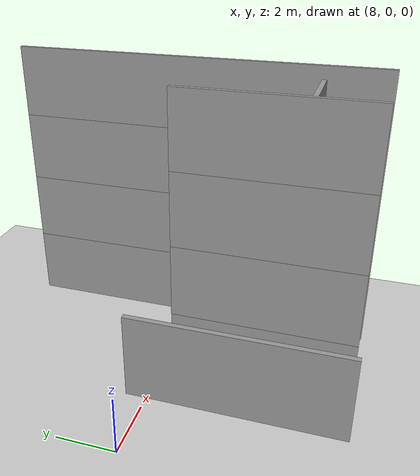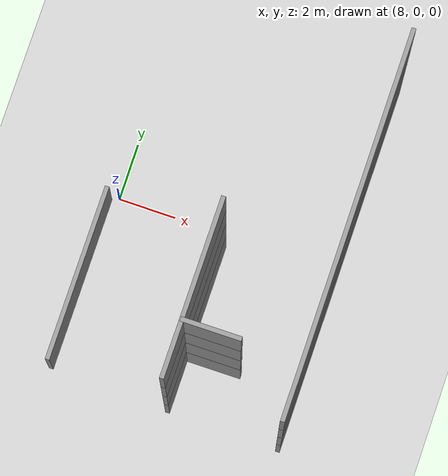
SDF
<sdf version="1.6">
 <world name="default">
  <model name="ground_plane">
   <static>1</static>
   <link name="link">
    <collision name="collision">
     <geometry><plane><normal>0 0 1</normal><size>100 100</size></plane></geometry>
     <surface>
      <contact><collide_bitmask>65535</collide_bitmask></contact>
      <friction><ode><mu>100</mu><mu2>50</mu2></ode></friction>
     </surface>
    </collision>
    <visual name="visual">
     <cast_shadows>0</cast_shadows>
     <geometry><plane><normal>0 0 1</normal><size>100 100</size></plane></geometry>
     <material>
      <script><uri>file://media/materials/scripts/gazebo.material</uri><name>Gazebo/Grey</name></script>
     </material>
    </visual>
   </link>
  </model>
  <model name="floor2plan_v2">
   <link name="Wall_101">
    <pose>15.925 0 5 0 -0 1.5708</pose>
    <visual name="Wall_101_Visual">
     <pose>0 0 1.25 0 -0 0</pose>
     <geometry><box><size>13.023 0.15 2.5</size></box></geometry>
     <material>
      <script><uri>file://media/materials/scripts/gazebo.material</uri><name>Gazebo/Grey</name></script>
      <ambient>1 1 1 1</ambient>
      <shader type="pixel"/>
      <diffuse>0.7 0.7 0.7 1</diffuse>
      <specular>0.01 0.01 0.01 1</specular>
      <emissive>0 0 0 1</emissive>
     </material>
     <meta><layer>2</layer></meta>
    </visual>
    <collision name="Wall_101_Collision">
     <pose>0 0 1.25 0 -0 0</pose>
     <geometry><box><size>13.023 0.15 2.5</size></box></geometry>
     <surface>
      <friction>
       <ode><mu>1</mu><mu2>1</mu2><fdir1>0 0 0</fdir1><slip1>0</slip1><slip2>0</slip2></ode>
       <torsional>
        <coefficient>1</coefficient>
        <patch_radius>0</patch_radius>
        <surface_radius>0</surface_radius>
        <use_patch_radius>1</use_patch_radius>
        <ode><slip>0</slip></ode>
       </torsional>
      </friction>
      <bounce><restitution_coefficient>0</restitution_coefficient><threshold>1e+06</threshold></bounce>
      <contact>
       <collide_without_contact>0</collide_without_contact>
       <collide_without_contact_bitmask>1</collide_without_contact_bitmask>
       <collide_bitmask>1</collide_bitmask>
       <ode>
        <soft_cfm>0</soft_cfm>
        <soft_erp>0.2</soft_erp>
        <kp>1e+13</kp>
        <kd>1</kd>
        <max_vel>0.01</max_vel>
        <min_depth>0</min_depth>
       </ode>
       <bullet>
        <split_impulse>1</split_impulse>
        <split_impulse_penetration_threshold>-0.01</split_impulse_penetration_threshold>
        <soft_cfm>0</soft_cfm>
        <soft_erp>0.2</soft_erp>
        <kp>1e+13</kp>
        <kd>1</kd>
       </bullet>
      </contact>
     </surface>
    </collision>
   </link>
   <link name="Wall_11">
    <pose>15.925 0 0 0 -0 1.5708</pose>
    <visual name="Wall_11_Visual">
     <pose>0 0 1.25 0 -0 0</pose>
     <geometry><box><size>13.023 0.15 2.5</size></box></geometry>
     <material>
      <script><uri>file://media/materials/scripts/gazebo.material</uri><name>Gazebo/Grey</name></script>
      <ambient>1 1 1 1</ambient>
      <shader type="pixel"/>
      <diffuse>0.7 0.7 0.7 1</diffuse>
      <specular>0.01 0.01 0.01 1</specular>
      <emissive>0 0 0 1</emissive>
     </material>
     <meta><layer>0</layer></meta>
    </visual>
    <collision name="Wall_11_Collision">
     <pose>0 0 1.25 0 -0 0</pose>
     <geometry><box><size>13.023 0.15 2.5</size></box></geometry>
     <surface>
      <friction>
       <ode><mu>1</mu><mu2>1</mu2><fdir1>0 0 0</fdir1><slip1>0</slip1><slip2>0</slip2></ode>
       <torsional>
        <coefficient>1</coefficient>
        <patch_radius>0</patch_radius>
        <surface_radius>0</surface_radius>
        <use_patch_radius>1</use_patch_radius>
        <ode><slip>0</slip></ode>
       </torsional>
      </friction>
      <bounce><restitution_coefficient>0</restitution_coefficient><threshold>1e+06</threshold></bounce>
      <contact>
       <collide_without_contact>0</collide_without_contact>
       <collide_without_contact_bitmask>1</collide_without_contact_bitmask>
       <collide_bitmask>1</collide_bitmask>
       <ode>
        <soft_cfm>0</soft_cfm>
        <soft_erp>0.2</soft_erp>
        <kp>1e+13</kp>
        <kd>1</kd>
        <max_vel>0.01</max_vel>
        <min_depth>0</min_depth>
       </ode>
       <bullet>
        <split_impulse>1</split_impulse>
        <split_impulse_penetration_threshold>-0.01</split_impulse_penetration_threshold>
        <soft_cfm>0</soft_cfm>
        <soft_erp>0.2</soft_erp>
        <kp>1e+13</kp>
        <kd>1</kd>
       </bullet>
      </contact>
     </surface>
    </collision>
   </link>
   <link name="Wall_120">
    <pose>11.9851 -3.43428 5 0 0 -1.5708</pose>
    <visual name="Wall_120_Visual">
     <pose>0 0 1.25 0 -0 0</pose>
     <geometry><box><size>6 0.15 2.5</size></box></geometry>
     <material>
      <script><uri>file://media/materials/scripts/gazebo.material</uri><name>Gazebo/Grey</name></script>
      <ambient>1 1 1 1</ambient>
      <shader type="pixel"/>
      <diffuse>0.7 0.7 0.7 1</diffuse>
      <specular>0.01 0.01 0.01 1</specular>
      <emissive>0 0 0 1</emissive>
     </material>
     <meta><layer>2</layer></meta>
    </visual>
    <collision name="Wall_120_Collision">
     <pose>0 0 1.25 0 -0 0</pose>
     <geometry><box><size>6 0.15 2.5</size></box></geometry>
     <surface>
      <friction>
       <ode><mu>1</mu><mu2>1</mu2><fdir1>0 0 0</fdir1><slip1>0</slip1><slip2>0</slip2></ode>
       <torsional>
        <coefficient>1</coefficient>
        <patch_radius>0</patch_radius>
        <surface_radius>0</surface_radius>
        <use_patch_radius>1</use_patch_radius>
        <ode><slip>0</slip></ode>
       </torsional>
      </friction>
      <bounce><restitution_coefficient>0</restitution_coefficient><threshold>1e+06</threshold></bounce>
      <contact>
       <collide_without_contact>0</collide_without_contact>
       <collide_without_contact_bitmask>1</collide_without_contact_bitmask>
       <collide_bitmask>1</collide_bitmask>
       <ode>
        <soft_cfm>0</soft_cfm>
        <soft_erp>0.2</soft_erp>
        <kp>1e+13</kp>
        <kd>1</kd>
        <max_vel>0.01</max_vel>
        <min_depth>0</min_depth>
       </ode>
       <bullet>
        <split_impulse>1</split_impulse>
        <split_impulse_penetration_threshold>-0.01</split_impulse_penetration_threshold>
        <soft_cfm>0</soft_cfm>
        <soft_erp>0.2</soft_erp>
        <kp>1e+13</kp>
        <kd>1</kd>
       </bullet>
      </contact>
     </surface>
    </collision>
   </link>
   <link name="Wall_123">
    <pose>12.9421 -4.48828 5 0 -0 0</pose>
    <visual name="Wall_123_Visual">
     <pose>0 0 1.25 0 -0 0</pose>
     <geometry><box><size>2 0.15 2.5</size></box></geometry>
     <material>
      <script><uri>file://media/materials/scripts/gazebo.material</uri><name>Gazebo/Grey</name></script>
      <ambient>1 1 1 1</ambient>
      <shader type="pixel"/>
      <diffuse>0.7 0.7 0.7 1</diffuse>
      <specular>0.01 0.01 0.01 1</specular>
      <emissive>0 0 0 1</emissive>
     </material>
     <meta><layer>2</layer></meta>
    </visual>
    <collision name="Wall_123_Collision">
     <pose>0 0 1.25 0 -0 0</pose>
     <geometry><box><size>2 0.15 2.5</size></box></geometry>
     <surface>
      <friction>
       <ode><mu>1</mu><mu2>1</mu2><fdir1>0 0 0</fdir1><slip1>0</slip1><slip2>0</slip2></ode>
       <torsional>
        <coefficient>1</coefficient>
        <patch_radius>0</patch_radius>
        <surface_radius>0</surface_radius>
        <use_patch_radius>1</use_patch_radius>
        <ode><slip>0</slip></ode>
       </torsional>
      </friction>
      <bounce><restitution_coefficient>0</restitution_coefficient><threshold>1e+06</threshold></bounce>
      <contact>
       <collide_without_contact>0</collide_without_contact>
       <collide_without_contact_bitmask>1</collide_without_contact_bitmask>
       <collide_bitmask>1</collide_bitmask>
       <ode>
        <soft_cfm>0</soft_cfm>
        <soft_erp>0.2</soft_erp>
        <kp>1e+13</kp>
        <kd>1</kd>
        <max_vel>0.01</max_vel>
        <min_depth>0</min_depth>
       </ode>
       <bullet>
        <split_impulse>1</split_impulse>
        <split_impulse_penetration_threshold>-0.01</split_impulse_penetration_threshold>
        <soft_cfm>0</soft_cfm>
        <soft_erp>0.2</soft_erp>
        <kp>1e+13</kp>
        <kd>1</kd>
       </bullet>
      </contact>
     </surface>
    </collision>
   </link>
   <link name="Wall_127">
    <pose>15.925 0 7.5 0 -0 1.5708</pose>
    <visual name="Wall_127_Visual">
     <pose>0 0 1.25 0 -0 0</pose>
     <geometry><box><size>13.023 0.15 2.5</size></box></geometry>
     <material>
      <script><uri>file://media/materials/scripts/gazebo.material</uri><name>Gazebo/Grey</name></script>
      <ambient>1 1 1 1</ambient>
      <shader type="pixel"/>
      <diffuse>0.7 0.7 0.7 1</diffuse>
      <specular>0.01 0.01 0.01 1</specular>
      <emissive>0 0 0 1</emissive>
     </material>
     <meta><layer>3</layer></meta>
    </visual>
    <collision name="Wall_127_Collision">
     <pose>0 0 1.25 0 -0 0</pose>
     <geometry><box><size>13.023 0.15 2.5</size></box></geometry>
     <surface>
      <friction>
       <ode><mu>1</mu><mu2>1</mu2><fdir1>0 0 0</fdir1><slip1>0</slip1><slip2>0</slip2></ode>
       <torsional>
        <coefficient>1</coefficient>
        <patch_radius>0</patch_radius>
        <surface_radius>0</surface_radius>
        <use_patch_radius>1</use_patch_radius>
        <ode><slip>0</slip></ode>
       </torsional>
      </friction>
      <bounce><restitution_coefficient>0</restitution_coefficient><threshold>1e+06</threshold></bounce>
      <contact>
       <collide_without_contact>0</collide_without_contact>
       <collide_without_contact_bitmask>1</collide_without_contact_bitmask>
       <collide_bitmask>1</collide_bitmask>
       <ode>
        <soft_cfm>0</soft_cfm>
        <soft_erp>0.2</soft_erp>
        <kp>1e+13</kp>
        <kd>1</kd>
        <max_vel>0.01</max_vel>
        <min_depth>0</min_depth>
       </ode>
       <bullet>
        <split_impulse>1</split_impulse>
        <split_impulse_penetration_threshold>-0.01</split_impulse_penetration_threshold>
        <soft_cfm>0</soft_cfm>
        <soft_erp>0.2</soft_erp>
        <kp>1e+13</kp>
        <kd>1</kd>
       </bullet>
      </contact>
     </surface>
    </collision>
   </link>
   <link name="Wall_146">
    <pose>11.9851 -3.43428 7.5 0 0 -1.5708</pose>
    <visual name="Wall_146_Visual">
     <pose>0 0 1.25 0 -0 0</pose>
     <geometry><box><size>6 0.15 2.5</size></box></geometry>
     <material>
      <script><uri>file://media/materials/scripts/gazebo.material</uri><name>Gazebo/Grey</name></script>
      <ambient>1 1 1 1</ambient>
      <shader type="pixel"/>
      <diffuse>0.7 0.7 0.7 1</diffuse>
      <specular>0.01 0.01 0.01 1</specular>
      <emissive>0 0 0 1</emissive>
     </material>
     <meta><layer>3</layer></meta>
    </visual>
    <collision name="Wall_146_Collision">
     <pose>0 0 1.25 0 -0 0</pose>
     <geometry><box><size>6 0.15 2.5</size></box></geometry>
     <surface>
      <friction>
       <ode><mu>1</mu><mu2>1</mu2><fdir1>0 0 0</fdir1><slip1>0</slip1><slip2>0</slip2></ode>
       <torsional>
        <coefficient>1</coefficient>
        <patch_radius>0</patch_radius>
        <surface_radius>0</surface_radius>
        <use_patch_radius>1</use_patch_radius>
        <ode><slip>0</slip></ode>
       </torsional>
      </friction>
      <bounce><restitution_coefficient>0</restitution_coefficient><threshold>1e+06</threshold></bounce>
      <contact>
       <collide_without_contact>0</collide_without_contact>
       <collide_without_contact_bitmask>1</collide_without_contact_bitmask>
       <collide_bitmask>1</collide_bitmask>
       <ode>
        <soft_cfm>0</soft_cfm>
        <soft_erp>0.2</soft_erp>
        <kp>1e+13</kp>
        <kd>1</kd>
        <max_vel>0.01</max_vel>
        <min_depth>0</min_depth>
       </ode>
       <bullet>
        <split_impulse>1</split_impulse>
        <split_impulse_penetration_threshold>-0.01</split_impulse_penetration_threshold>
        <soft_cfm>0</soft_cfm>
        <soft_erp>0.2</soft_erp>
        <kp>1e+13</kp>
        <kd>1</kd>
       </bullet>
      </contact>
     </surface>
    </collision>
   </link>
   <link name="Wall_149">
    <pose>12.9421 -4.48828 7.5 0 -0 0</pose>
    <visual name="Wall_149_Visual">
     <pose>0 0 1.25 0 -0 0</pose>
     <geometry><box><size>2 0.15 2.5</size></box></geometry>
     <material>
      <script><uri>file://media/materials/scripts/gazebo.material</uri><name>Gazebo/Grey</name></script>
      <ambient>1 1 1 1</ambient>
      <shader type="pixel"/>
      <diffuse>0.7 0.7 0.7 1</diffuse>
      <specular>0.01 0.01 0.01 1</specular>
      <emissive>0 0 0 1</emissive>
     </material>
     <meta><layer>3</layer></meta>
    </visual>
    <collision name="Wall_149_Collision">
     <pose>0 0 1.25 0 -0 0</pose>
     <geometry><box><size>2 0.15 2.5</size></box></geometry>
     <surface>
      <friction>
       <ode><mu>1</mu><mu2>1</mu2><fdir1>0 0 0</fdir1><slip1>0</slip1><slip2>0</slip2></ode>
       <torsional>
        <coefficient>1</coefficient>
        <patch_radius>0</patch_radius>
        <surface_radius>0</surface_radius>
        <use_patch_radius>1</use_patch_radius>
        <ode><slip>0</slip></ode>
       </torsional>
      </friction>
      <bounce><restitution_coefficient>0</restitution_coefficient><threshold>1e+06</threshold></bounce>
      <contact>
       <collide_without_contact>0</collide_without_contact>
       <collide_without_contact_bitmask>1</collide_without_contact_bitmask>
       <collide_bitmask>1</collide_bitmask>
       <ode>
        <soft_cfm>0</soft_cfm>
        <soft_erp>0.2</soft_erp>
        <kp>1e+13</kp>
        <kd>1</kd>
        <max_vel>0.01</max_vel>
        <min_depth>0</min_depth>
       </ode>
       <bullet>
        <split_impulse>1</split_impulse>
        <split_impulse_penetration_threshold>-0.01</split_impulse_penetration_threshold>
        <soft_cfm>0</soft_cfm>
        <soft_erp>0.2</soft_erp>
        <kp>1e+13</kp>
        <kd>1</kd>
       </bullet>
      </contact>
     </surface>
    </collision>
   </link>
   <link name="Wall_64">
    <pose>11.9851 -3.43428 0 0 0 -1.5708</pose>
    <visual name="Wall_64_Visual">
     <pose>0 0 1.25 0 -0 0</pose>
     <geometry><box><size>6 0.15 2.5</size></box></geometry>
     <material>
      <script><uri>file://media/materials/scripts/gazebo.material</uri><name>Gazebo/Grey</name></script>
      <ambient>1 1 1 1</ambient>
      <shader type="pixel"/>
      <diffuse>0.7 0.7 0.7 1</diffuse>
      <specular>0.01 0.01 0.01 1</specular>
      <emissive>0 0 0 1</emissive>
     </material>
     <meta><layer>0</layer></meta>
    </visual>
    <collision name="Wall_64_Collision">
     <pose>0 0 1.25 0 -0 0</pose>
     <geometry><box><size>6 0.15 2.5</size></box></geometry>
     <surface>
      <friction>
       <ode><mu>1</mu><mu2>1</mu2><fdir1>0 0 0</fdir1><slip1>0</slip1><slip2>0</slip2></ode>
       <torsional>
        <coefficient>1</coefficient>
        <patch_radius>0</patch_radius>
        <surface_radius>0</surface_radius>
        <use_patch_radius>1</use_patch_radius>
        <ode><slip>0</slip></ode>
       </torsional>
      </friction>
      <bounce><restitution_coefficient>0</restitution_coefficient><threshold>1e+06</threshold></bounce>
      <contact>
       <collide_without_contact>0</collide_without_contact>
       <collide_without_contact_bitmask>1</collide_without_contact_bitmask>
       <collide_bitmask>1</collide_bitmask>
       <ode>
        <soft_cfm>0</soft_cfm>
        <soft_erp>0.2</soft_erp>
        <kp>1e+13</kp>
        <kd>1</kd>
        <max_vel>0.01</max_vel>
        <min_depth>0</min_depth>
       </ode>
       <bullet>
        <split_impulse>1</split_impulse>
        <split_impulse_penetration_threshold>-0.01</split_impulse_penetration_threshold>
        <soft_cfm>0</soft_cfm>
        <soft_erp>0.2</soft_erp>
        <kp>1e+13</kp>
        <kd>1</kd>
       </bullet>
      </contact>
     </surface>
    </collision>
   </link>
   <link name="Wall_70">
    <pose>12.9421 -4.48828 0 0 -0 0</pose>
    <visual name="Wall_70_Visual">
     <pose>0 0 1.25 0 -0 0</pose>
     <geometry><box><size>2 0.15 2.5</size></box></geometry>
     <material>
      <script><uri>file://media/materials/scripts/gazebo.material</uri><name>Gazebo/Grey</name></script>
      <ambient>1 1 1 1</ambient>
      <shader type="pixel"/>
      <diffuse>0.7 0.7 0.7 1</diffuse>
      <specular>0.01 0.01 0.01 1</specular>
      <emissive>0 0 0 1</emissive>
     </material>
     <meta><layer>0</layer></meta>
    </visual>
    <collision name="Wall_70_Collision">
     <pose>0 0 1.25 0 -0 0</pose>
     <geometry><box><size>2 0.15 2.5</size></box></geometry>
     <surface>
      <friction>
       <ode><mu>1</mu><mu2>1</mu2><fdir1>0 0 0</fdir1><slip1>0</slip1><slip2>0</slip2></ode>
       <torsional>
        <coefficient>1</coefficient>
        <patch_radius>0</patch_radius>
        <surface_radius>0</surface_radius>
        <use_patch_radius>1</use_patch_radius>
        <ode><slip>0</slip></ode>
       </torsional>
      </friction>
      <bounce><restitution_coefficient>0</restitution_coefficient><threshold>1e+06</threshold></bounce>
      <contact>
       <collide_without_contact>0</collide_without_contact>
       <collide_without_contact_bitmask>1</collide_without_contact_bitmask>
       <collide_bitmask>1</collide_bitmask>
       <ode>
        <soft_cfm>0</soft_cfm>
        <soft_erp>0.2</soft_erp>
        <kp>1e+13</kp>
        <kd>1</kd>
        <max_vel>0.01</max_vel>
        <min_depth>0</min_depth>
       </ode>
       <bullet>
        <split_impulse>1</split_impulse>
        <split_impulse_penetration_threshold>-0.01</split_impulse_penetration_threshold>
        <soft_cfm>0</soft_cfm>
        <soft_erp>0.2</soft_erp>
        <kp>1e+13</kp>
        <kd>1</kd>
       </bullet>
      </contact>
     </surface>
    </collision>
   </link>
   <link name="Wall_75">
    <pose>15.925 0 2.5 0 -0 1.5708</pose>
    <visual name="Wall_75_Visual">
     <pose>0 0 1.25 0 -0 0</pose>
     <geometry><box><size>13.023 0.15 2.5</size></box></geometry>
     <material>
      <script><uri>file://media/materials/scripts/gazebo.material</uri><name>Gazebo/Grey</name></script>
      <ambient>1 1 1 1</ambient>
      <shader type="pixel"/>
      <diffuse>0.7 0.7 0.7 1</diffuse>
      <specular>0.01 0.01 0.01 1</specular>
      <emissive>0 0 0 1</emissive>
     </material>
     <meta><layer>1</layer></meta>
    </visual>
    <collision name="Wall_75_Collision">
     <pose>0 0 1.25 0 -0 0</pose>
     <geometry><box><size>13.023 0.15 2.5</size></box></geometry>
     <surface>
      <friction>
       <ode><mu>1</mu><mu2>1</mu2><fdir1>0 0 0</fdir1><slip1>0</slip1><slip2>0</slip2></ode>
       <torsional>
        <coefficient>1</coefficient>
        <patch_radius>0</patch_radius>
        <surface_radius>0</surface_radius>
        <use_patch_radius>1</use_patch_radius>
        <ode><slip>0</slip></ode>
       </torsional>
      </friction>
      <bounce><restitution_coefficient>0</restitution_coefficient><threshold>1e+06</threshold></bounce>
      <contact>
       <collide_without_contact>0</collide_without_contact>
       <collide_without_contact_bitmask>1</collide_without_contact_bitmask>
       <collide_bitmask>1</collide_bitmask>
       <ode>
        <soft_cfm>0</soft_cfm>
        <soft_erp>0.2</soft_erp>
        <kp>1e+13</kp>
        <kd>1</kd>
        <max_vel>0.01</max_vel>
        <min_depth>0</min_depth>
       </ode>
       <bullet>
        <split_impulse>1</split_impulse>
        <split_impulse_penetration_threshold>-0.01</split_impulse_penetration_threshold>
        <soft_cfm>0</soft_cfm>
        <soft_erp>0.2</soft_erp>
        <kp>1e+13</kp>
        <kd>1</kd>
       </bullet>
      </contact>
     </surface>
    </collision>
   </link>
   <link name="Wall_93">
    <pose>7.9921 -3.50328 2.5 0 0 -1.5708</pose>
    <visual name="Wall_93_Visual">
     <pose>0 0 1.25 0 -0 0</pose>
     <geometry><box><size>6 0.15 2.5</size></box></geometry>
     <material>
      <script><uri>file://media/materials/scripts/gazebo.material</uri><name>Gazebo/Grey</name></script>
      <ambient>1 1 1 1</ambient>
      <shader type="pixel"/>
      <diffuse>0.7 0.7 0.7 1</diffuse>
      <specular>0.01 0.01 0.01 1</specular>
      <emissive>0 0 0 1</emissive>
     </material>
     <meta><layer>1</layer></meta>
    </visual>
    <collision name="Wall_93_Collision">
     <pose>0 0 1.25 0 -0 0</pose>
     <geometry><box><size>6 0.15 2.5</size></box></geometry>
     <surface>
      <friction>
       <ode><mu>1</mu><mu2>1</mu2><fdir1>0 0 0</fdir1><slip1>0</slip1><slip2>0</slip2></ode>
       <torsional>
        <coefficient>1</coefficient>
        <patch_radius>0</patch_radius>
        <surface_radius>0</surface_radius>
        <use_patch_radius>1</use_patch_radius>
        <ode><slip>0</slip></ode>
       </torsional>
      </friction>
      <bounce><restitution_coefficient>0</restitution_coefficient><threshold>1e+06</threshold></bounce>
      <contact>
       <collide_without_contact>0</collide_without_contact>
       <collide_without_contact_bitmask>1</collide_without_contact_bitmask>
       <collide_bitmask>1</collide_bitmask>
       <ode>
        <soft_cfm>0</soft_cfm>
        <soft_erp>0.2</soft_erp>
        <kp>1e+13</kp>
        <kd>1</kd>
        <max_vel>0.01</max_vel>
        <min_depth>0</min_depth>
       </ode>
       <bullet>
        <split_impulse>1</split_impulse>
        <split_impulse_penetration_threshold>-0.01</split_impulse_penetration_threshold>
        <soft_cfm>0</soft_cfm>
        <soft_erp>0.2</soft_erp>
        <kp>1e+13</kp>
        <kd>1</kd>
       </bullet>
      </contact>
     </surface>
    </collision>
   </link>
   <link name="Wall_94">
    <pose>11.9851 -3.43428 2.5 0 0 -1.5708</pose>
    <visual name="Wall_94_Visual">
     <pose>0 0 1.25 0 -0 0</pose>
     <geometry><box><size>6 0.15 2.5</size></box></geometry>
     <material>
      <script><uri>file://media/materials/scripts/gazebo.material</uri><name>Gazebo/Grey</name></script>
      <ambient>1 1 1 1</ambient>
      <shader type="pixel"/>
      <diffuse>0.7 0.7 0.7 1</diffuse>
      <specular>0.01 0.01 0.01 1</specular>
      <emissive>0 0 0 1</emissive>
     </material>
     <meta><layer>1</layer></meta>
    </visual>
    <collision name="Wall_94_Collision">
     <pose>0 0 1.25 0 -0 0</pose>
     <geometry><box><size>6 0.15 2.5</size></box></geometry>
     <surface>
      <friction>
       <ode><mu>1</mu><mu2>1</mu2><fdir1>0 0 0</fdir1><slip1>0</slip1><slip2>0</slip2></ode>
       <torsional>
        <coefficient>1</coefficient>
        <patch_radius>0</patch_radius>
        <surface_radius>0</surface_radius>
        <use_patch_radius>1</use_patch_radius>
        <ode><slip>0</slip></ode>
       </torsional>
      </friction>
      <bounce><restitution_coefficient>0</restitution_coefficient><threshold>1e+06</threshold></bounce>
      <contact>
       <collide_without_contact>0</collide_without_contact>
       <collide_without_contact_bitmask>1</collide_without_contact_bitmask>
       <collide_bitmask>1</collide_bitmask>
       <ode>
        <soft_cfm>0</soft_cfm>
        <soft_erp>0.2</soft_erp>
        <kp>1e+13</kp>
        <kd>1</kd>
        <max_vel>0.01</max_vel>
        <min_depth>0</min_depth>
       </ode>
       <bullet>
        <split_impulse>1</split_impulse>
        <split_impulse_penetration_threshold>-0.01</split_impulse_penetration_threshold>
        <soft_cfm>0</soft_cfm>
        <soft_erp>0.2</soft_erp>
        <kp>1e+13</kp>
        <kd>1</kd>
       </bullet>
      </contact>
     </surface>
    </collision>
   </link>
   <link name="Wall_97">
    <pose>12.9421 -4.48828 2.5 0 -0 0</pose>
    <visual name="Wall_97_Visual">
     <pose>0 0 1.25 0 -0 0</pose>
     <geometry><box><size>2 0.15 2.5</size></box></geometry>
     <material>
      <script><uri>file://media/materials/scripts/gazebo.material</uri><name>Gazebo/Grey</name></script>
      <ambient>1 1 1 1</ambient>
      <shader type="pixel"/>
      <diffuse>0.7 0.7 0.7 1</diffuse>
      <specular>0.01 0.01 0.01 1</specular>
      <emissive>0 0 0 1</emissive>
     </material>
     <meta><layer>1</layer></meta>
    </visual>
    <collision name="Wall_97_Collision">
     <pose>0 0 1.25 0 -0 0</pose>
     <geometry><box><size>2 0.15 2.5</size></box></geometry>
     <surface>
      <friction>
       <ode><mu>1</mu><mu2>1</mu2><fdir1>0 0 0</fdir1><slip1>0</slip1><slip2>0</slip2></ode>
       <torsional>
        <coefficient>1</coefficient>
        <patch_radius>0</patch_radius>
        <surface_radius>0</surface_radius>
        <use_patch_radius>1</use_patch_radius>
        <ode><slip>0</slip></ode>
       </torsional>
      </friction>
      <bounce><restitution_coefficient>0</restitution_coefficient><threshold>1e+06</threshold></bounce>
      <contact>
       <collide_without_contact>0</collide_without_contact>
       <collide_without_contact_bitmask>1</collide_without_contact_bitmask>
       <collide_bitmask>1</collide_bitmask>
       <ode>
        <soft_cfm>0</soft_cfm>
        <soft_erp>0.2</soft_erp>
        <kp>1e+13</kp>
        <kd>1</kd>
        <max_vel>0.01</max_vel>
        <min_depth>0</min_depth>
       </ode>
       <bullet>
        <split_impulse>1</split_impulse>
        <split_impulse_penetration_threshold>-0.01</split_impulse_penetration_threshold>
        <soft_cfm>0</soft_cfm>
        <soft_erp>0.2</soft_erp>
        <kp>1e+13</kp>
        <kd>1</kd>
       </bullet>
      </contact>
     </surface>
    </collision>
   </link>
   <static>1</static>
   <pose>-0.074109 0.009792 0 0 -0 0</pose>
  </model>
 </world>
</sdf>
